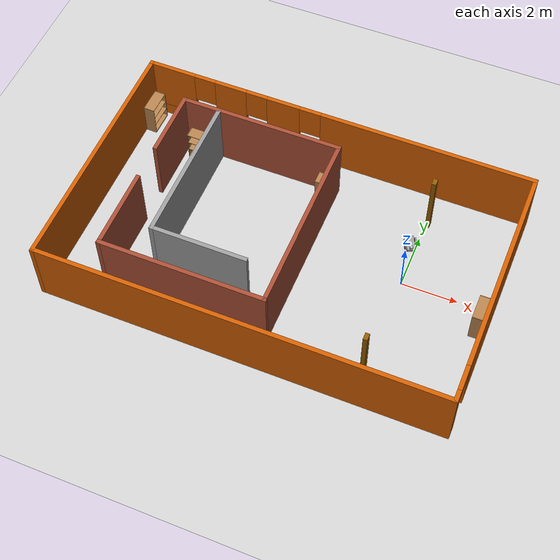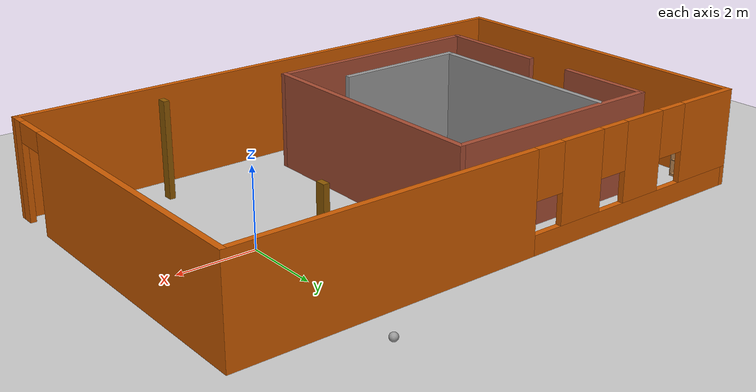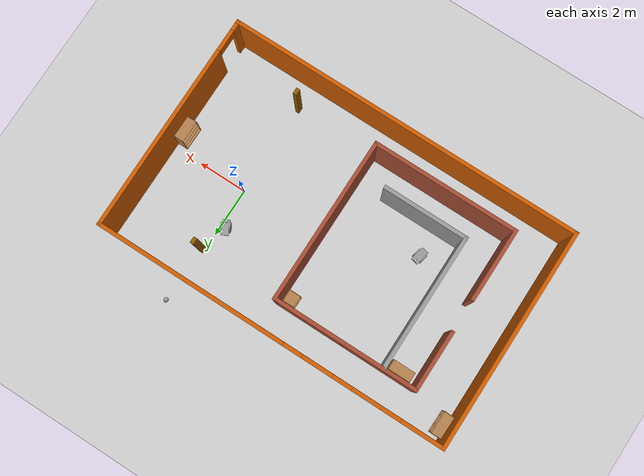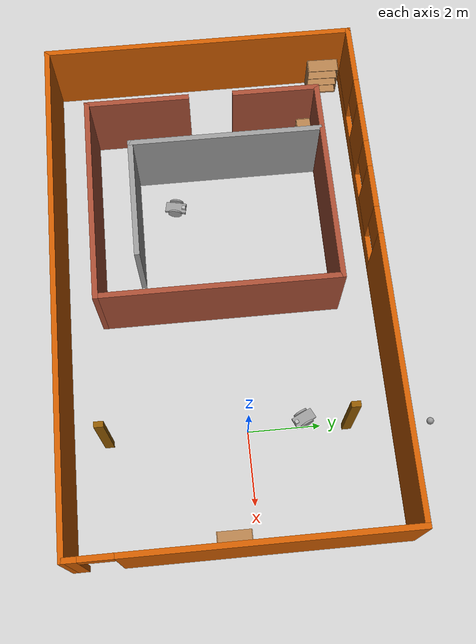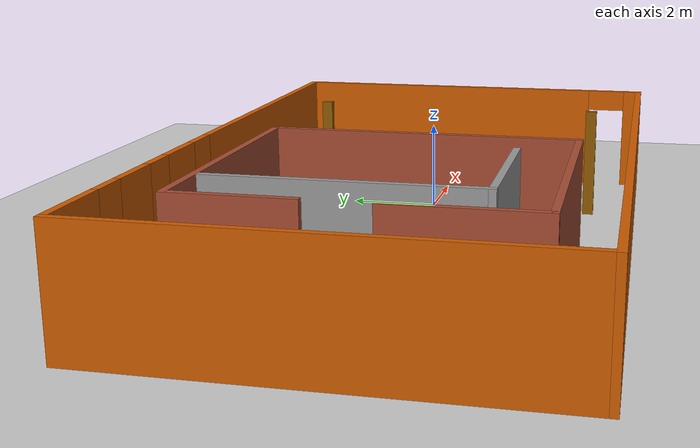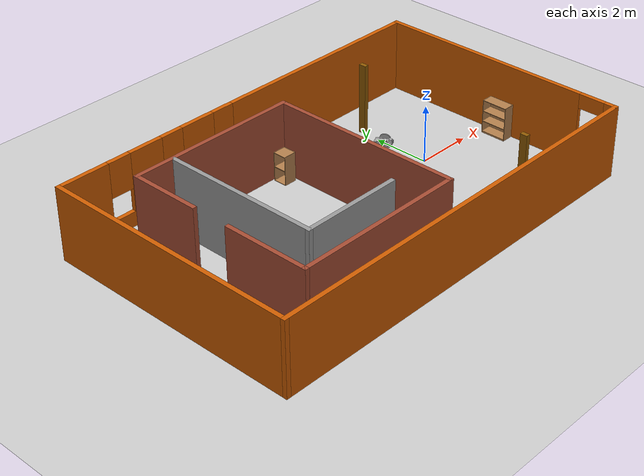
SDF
<sdf version="1.6">
 <world name="default">
  <light name="sun" type="directional">
   <pose>0 0 10 0 -0 0</pose>
   <diffuse>0.8 0.8 0.8 1</diffuse>
   <specular>0.2 0.2 0.2 1</specular>
   <attenuation>
    <range>1000</range>
    <constant>0.9</constant>
    <linear>0.01</linear>
    <quadratic>0.001</quadratic>
   </attenuation>
   <direction>-0.5 0.1 -0.9</direction>
  </light>
  <model name="ground_plane">
   <static>1</static>
   <link name="link">
    <collision name="collision">
     <geometry><plane><normal>0 0 1</normal><size>100 100</size></plane></geometry>
     <surface>
      <contact><collide_bitmask>65535</collide_bitmask></contact>
      <friction><ode><mu>100</mu><mu2>50</mu2></ode></friction>
     </surface>
    </collision>
    <visual name="visual">
     <cast_shadows>0</cast_shadows>
     <geometry><plane><normal>0 0 1</normal><size>100 100</size></plane></geometry>
     <material>
      <script><uri>file://media/materials/scripts/gazebo.material</uri><name>Gazebo/Grey</name></script>
     </material>
    </visual>
   </link>
  </model>
  <gravity>0 0 -9.8</gravity>
  <magnetic_field>6e-06 2.3e-05 -4.2e-05</magnetic_field>
  <atmosphere type="adiabatic"/>
  <physics name="default_physics" default="0" type="ode">
   <max_step_size>0.001</max_step_size>
   <real_time_factor>1</real_time_factor>
   <real_time_update_rate>1000</real_time_update_rate>
  </physics>
  <scene><ambient>0.4 0.4 0.4 1</ambient><background>0.7 0.7 0.7 1</background><shadows>1</shadows></scene>
  <audio><device>default</device></audio>
  <spherical_coordinates>
   <surface_model>EARTH_WGS84</surface_model>
   <latitude_deg>0</latitude_deg>
   <longitude_deg>0</longitude_deg>
   <elevation>0</elevation>
   <heading_deg>0</heading_deg>
  </spherical_coordinates>
  <model name="Untitled">
   <pose>-3.95922 -0.405564 0 0 -0 3.14159</pose>
   <link name="Wall_1">
    <pose>-7.175 0 0 0 -0 -1.5708</pose>
    <visual name="Wall_1_Visual_0">
     <pose>-4.27517 0 1.25 0 -0 0</pose>
     <geometry><box><size>0.449656 0.15 2.5</size></box></geometry>
     <material>
      <script><uri>file://media/materials/scripts/gazebo.material</uri><name>Gazebo/Grey</name></script>
      <ambient>0.807843 0.360784 0 1</ambient>
     </material>
     <meta><layer>0</layer></meta>
    </visual>
    <collision name="Wall_1_Collision_0">
     <geometry><box><size>0.449656 0.15 2.5</size></box></geometry>
     <pose>-4.27517 0 1.25 0 -0 0</pose>
    </collision>
    <visual name="Wall_1_Visual_1">
     <pose>0.674828 0 1.25 0 -0 0</pose>
     <geometry><box><size>7.65034 0.15 2.5</size></box></geometry>
     <material>
      <script><uri>file://media/materials/scripts/gazebo.material</uri><name>Gazebo/Grey</name></script>
      <ambient>0.807843 0.360784 0 1</ambient>
     </material>
     <meta><layer>0</layer></meta>
    </visual>
    <collision name="Wall_1_Collision_1">
     <geometry><box><size>7.65034 0.15 2.5</size></box></geometry>
     <pose>0.674828 0 1.25 0 -0 0</pose>
    </collision>
    <visual name="Wall_1_Visual_2">
     <pose>-3.60034 0 2.25 0 -0 0</pose>
     <geometry><box><size>0.9 0.15 0.5</size></box></geometry>
     <material>
      <script><uri>file://media/materials/scripts/gazebo.material</uri><name>Gazebo/Grey</name></script>
      <ambient>0.807843 0.360784 0 1</ambient>
     </material>
     <meta><layer>0</layer></meta>
    </visual>
    <collision name="Wall_1_Collision_2">
     <geometry><box><size>0.9 0.15 0.5</size></box></geometry>
     <pose>-3.60034 0 2.25 0 -0 0</pose>
    </collision>
   </link>
   <link name="Wall_10">
    <collision name="Wall_10_Collision">
     <geometry><box><size>6 0.15 2.5</size></box></geometry>
     <pose>0 0 1.25 0 -0 0</pose>
    </collision>
    <visual name="Wall_10_Visual">
     <pose>0 0 1.25 0 -0 0</pose>
     <geometry><box><size>6 0.15 2.5</size></box></geometry>
     <material>
      <script><uri>file://media/materials/scripts/gazebo.material</uri><name>Gazebo/Bricks</name></script>
      <ambient>1 1 1 1</ambient>
     </material>
     <meta><layer>0</layer></meta>
    </visual>
    <pose>2.40759 3.33887 0 0 -0 0</pose>
   </link>
   <link name="Wall_11">
    <collision name="Wall_11_Collision">
     <geometry><box><size>3 0.15 2.5</size></box></geometry>
     <pose>0 0 1.25 0 -0 0</pose>
    </collision>
    <visual name="Wall_11_Visual">
     <pose>0 0 1.25 0 -0 0</pose>
     <geometry><box><size>3 0.15 2.5</size></box></geometry>
     <material>
      <script><uri>file://media/materials/scripts/gazebo.material</uri><name>Gazebo/Bricks</name></script>
      <ambient>1 1 1 1</ambient>
     </material>
     <meta><layer>0</layer></meta>
    </visual>
    <pose>5.33259 1.91387 0 0 -0 -1.5708</pose>
   </link>
   <link name="Wall_13">
    <collision name="Wall_13_Collision">
     <geometry><box><size>5.5 0.15 2.5</size></box></geometry>
     <pose>0 0 1.25 0 -0 0</pose>
    </collision>
    <visual name="Wall_13_Visual">
     <pose>0 0 1.25 0 -0 0</pose>
     <geometry><box><size>5.5 0.15 2.5</size></box></geometry>
     <material>
      <script><uri>file://media/materials/scripts/gazebo.material</uri><name>Gazebo/Grey</name></script>
      <ambient>1 1 1 1</ambient>
     </material>
     <meta><layer>0</layer></meta>
    </visual>
    <pose>3.98803 -0.50293 0 0 -0 1.5708</pose>
   </link>
   <link name="Wall_14">
    <collision name="Wall_14_Collision">
     <geometry><box><size>3.5 0.15 2.5</size></box></geometry>
     <pose>0 0 1.25 0 -0 0</pose>
    </collision>
    <visual name="Wall_14_Visual">
     <pose>0 0 1.25 0 -0 0</pose>
     <geometry><box><size>3.5 0.15 2.5</size></box></geometry>
     <material>
      <script><uri>file://media/materials/scripts/gazebo.material</uri><name>Gazebo/Grey</name></script>
      <ambient>1 1 1 1</ambient>
     </material>
     <meta><layer>0</layer></meta>
    </visual>
    <pose>2.31303 2.17207 0 0 -0 3.14159</pose>
   </link>
   <link name="Wall_2">
    <pose>0 -4.425 0 0 -0 0</pose>
    <visual name="Wall_2_Visual_0">
     <pose>-3.32945 0 1.25 0 -0 0</pose>
     <geometry><box><size>7.84111 0.15 2.5</size></box></geometry>
     <material>
      <script><uri>file://media/materials/scripts/gazebo.material</uri><name>Gazebo/Grey</name></script>
      <ambient>0.807843 0.360784 0 1</ambient>
     </material>
     <meta><layer>0</layer></meta>
    </visual>
    <collision name="Wall_2_Collision_0">
     <geometry><box><size>7.84111 0.15 2.5</size></box></geometry>
     <pose>-3.32945 0 1.25 0 -0 0</pose>
    </collision>
    <visual name="Wall_2_Visual_1">
     <pose>3.92055 0 0.25 0 -0 0</pose>
     <geometry><box><size>6.65889 0.15 0.5</size></box></geometry>
     <material>
      <script><uri>file://media/materials/scripts/gazebo.material</uri><name>Gazebo/Grey</name></script>
      <ambient>0.807843 0.360784 0 1</ambient>
     </material>
     <meta><layer>0</layer></meta>
    </visual>
    <collision name="Wall_2_Collision_1">
     <geometry><box><size>6.65889 0.15 0.5</size></box></geometry>
     <pose>3.92055 0 0.25 0 -0 0</pose>
    </collision>
    <visual name="Wall_2_Visual_2">
     <pose>2.0169 0 1.5 0 -0 0</pose>
     <geometry><box><size>1.25158 0.15 2</size></box></geometry>
     <material>
      <script><uri>file://media/materials/scripts/gazebo.material</uri><name>Gazebo/Grey</name></script>
      <ambient>0.807843 0.360784 0 1</ambient>
     </material>
     <meta><layer>0</layer></meta>
    </visual>
    <collision name="Wall_2_Collision_2">
     <geometry><box><size>1.25158 0.15 2</size></box></geometry>
     <pose>2.0169 0 1.5 0 -0 0</pose>
    </collision>
    <visual name="Wall_2_Visual_3">
     <pose>4.04837 0 1.5 0 -0 0</pose>
     <geometry><box><size>1.21136 0.15 2</size></box></geometry>
     <material>
      <script><uri>file://media/materials/scripts/gazebo.material</uri><name>Gazebo/Grey</name></script>
      <ambient>0.807843 0.360784 0 1</ambient>
     </material>
     <meta><layer>0</layer></meta>
    </visual>
    <collision name="Wall_2_Collision_3">
     <geometry><box><size>1.21136 0.15 2</size></box></geometry>
     <pose>4.04837 0 1.5 0 -0 0</pose>
    </collision>
    <visual name="Wall_2_Visual_4">
     <pose>6.35203 0 1.5 0 -0 0</pose>
     <geometry><box><size>1.79595 0.15 2</size></box></geometry>
     <material>
      <script><uri>file://media/materials/scripts/gazebo.material</uri><name>Gazebo/Grey</name></script>
      <ambient>0.807843 0.360784 0 1</ambient>
     </material>
     <meta><layer>0</layer></meta>
    </visual>
    <collision name="Wall_2_Collision_4">
     <geometry><box><size>1.79595 0.15 2</size></box></geometry>
     <pose>6.35203 0 1.5 0 -0 0</pose>
    </collision>
    <visual name="Wall_2_Visual_5">
     <pose>0.99111 0 1.9 0 -0 0</pose>
     <geometry><box><size>0.8 0.15 1.2</size></box></geometry>
     <material>
      <script><uri>file://media/materials/scripts/gazebo.material</uri><name>Gazebo/Grey</name></script>
      <ambient>0.807843 0.360784 0 1</ambient>
     </material>
     <meta><layer>0</layer></meta>
    </visual>
    <collision name="Wall_2_Collision_5">
     <geometry><box><size>0.8 0.15 1.2</size></box></geometry>
     <pose>0.99111 0 1.9 0 -0 0</pose>
    </collision>
    <visual name="Wall_2_Visual_6">
     <pose>3.0427 0 1.9 0 -0 0</pose>
     <geometry><box><size>0.8 0.15 1.2</size></box></geometry>
     <material>
      <script><uri>file://media/materials/scripts/gazebo.material</uri><name>Gazebo/Grey</name></script>
      <ambient>0.807843 0.360784 0 1</ambient>
     </material>
     <meta><layer>0</layer></meta>
    </visual>
    <collision name="Wall_2_Collision_6">
     <geometry><box><size>0.8 0.15 1.2</size></box></geometry>
     <pose>3.0427 0 1.9 0 -0 0</pose>
    </collision>
    <visual name="Wall_2_Visual_7">
     <pose>5.05405 0 1.9 0 -0 0</pose>
     <geometry><box><size>0.8 0.15 1.2</size></box></geometry>
     <material>
      <script><uri>file://media/materials/scripts/gazebo.material</uri><name>Gazebo/Grey</name></script>
      <ambient>0.807843 0.360784 0 1</ambient>
     </material>
     <meta><layer>0</layer></meta>
    </visual>
    <collision name="Wall_2_Collision_7">
     <geometry><box><size>0.8 0.15 1.2</size></box></geometry>
     <pose>5.05405 0 1.9 0 -0 0</pose>
    </collision>
   </link>
   <link name="Wall_23">
    <collision name="Wall_23_Collision">
     <geometry><box><size>0.25 0.15 2.5</size></box></geometry>
     <pose>0 0 1.25 0 -0 0</pose>
    </collision>
    <visual name="Wall_23_Visual">
     <pose>0 0 1.25 0 -0 0</pose>
     <geometry><box><size>0.25 0.15 2.5</size></box></geometry>
     <material>
      <script><uri>file://media/materials/scripts/gazebo.material</uri><name>Gazebo/Grey</name></script>
      <ambient>0.560784 0.34902 0.00784314 1</ambient>
     </material>
     <meta><layer>0</layer></meta>
    </visual>
    <pose>-4.03728 -3.10782 0 0 -0 1.5708</pose>
   </link>
   <link name="Wall_25">
    <collision name="Wall_25_Collision">
     <geometry><box><size>0.25 0.15 2.5</size></box></geometry>
     <pose>0 0 1.25 0 -0 0</pose>
    </collision>
    <visual name="Wall_25_Visual">
     <pose>0 0 1.25 0 -0 0</pose>
     <geometry><box><size>0.25 0.15 2.5</size></box></geometry>
     <material>
      <script><uri>file://media/materials/scripts/gazebo.material</uri><name>Gazebo/Grey</name></script>
      <ambient>0.560784 0.34902 0.00784314 1</ambient>
     </material>
     <meta><layer>0</layer></meta>
    </visual>
    <pose>-3.95683 3.38944 0 0 -0 -1.5708</pose>
   </link>
   <link name="Wall_3">
    <collision name="Wall_3_Collision">
     <geometry><box><size>9 0.15 2.5</size></box></geometry>
     <pose>0 0 1.25 0 -0 0</pose>
    </collision>
    <visual name="Wall_3_Visual">
     <pose>0 0 1.25 0 -0 0</pose>
     <geometry><box><size>9 0.15 2.5</size></box></geometry>
     <material>
      <script><uri>file://media/materials/scripts/gazebo.material</uri><name>Gazebo/Grey</name></script>
      <ambient>0.807843 0.360784 0 1</ambient>
     </material>
     <meta><layer>0</layer></meta>
    </visual>
    <pose>7.175 0 0 0 -0 1.5708</pose>
   </link>
   <link name="Wall_4">
    <collision name="Wall_4_Collision">
     <geometry><box><size>14.5 0.15 2.5</size></box></geometry>
     <pose>0 0 1.25 0 -0 0</pose>
    </collision>
    <visual name="Wall_4_Visual">
     <pose>0 0 1.25 0 -0 0</pose>
     <geometry><box><size>14.5 0.15 2.5</size></box></geometry>
     <material>
      <script><uri>file://media/materials/scripts/gazebo.material</uri><name>Gazebo/Grey</name></script>
      <ambient>0.807843 0.360784 0 1</ambient>
     </material>
     <meta><layer>0</layer></meta>
    </visual>
    <pose>0 4.425 0 0 -0 3.14159</pose>
   </link>
   <link name="Wall_6">
    <collision name="Wall_6_Collision">
     <geometry><box><size>6.75 0.15 2.5</size></box></geometry>
     <pose>0 0 1.25 0 -0 0</pose>
    </collision>
    <visual name="Wall_6_Visual">
     <pose>0 0 1.25 0 -0 0</pose>
     <geometry><box><size>6.75 0.15 2.5</size></box></geometry>
     <material>
      <script><uri>file://media/materials/scripts/gazebo.material</uri><name>Gazebo/Bricks</name></script>
      <ambient>1 1 1 1</ambient>
     </material>
     <meta><layer>0</layer></meta>
    </visual>
    <pose>-0.517407 0.038867 0 0 -0 -1.5708</pose>
   </link>
   <link name="Wall_7">
    <collision name="Wall_7_Collision">
     <geometry><box><size>6 0.15 2.5</size></box></geometry>
     <pose>0 0 1.25 0 -0 0</pose>
    </collision>
    <visual name="Wall_7_Visual">
     <pose>0 0 1.25 0 -0 0</pose>
     <geometry><box><size>6 0.15 2.5</size></box></geometry>
     <material>
      <script><uri>file://media/materials/scripts/gazebo.material</uri><name>Gazebo/Bricks</name></script>
      <ambient>1 1 1 1</ambient>
     </material>
     <meta><layer>0</layer></meta>
    </visual>
    <pose>2.40759 -3.26113 0 0 -0 0</pose>
   </link>
   <link name="Wall_8">
    <collision name="Wall_8_Collision">
     <geometry><box><size>2.5 0.15 2.5</size></box></geometry>
     <pose>0 0 1.25 0 -0 0</pose>
    </collision>
    <visual name="Wall_8_Visual">
     <pose>0 0 1.25 0 -0 0</pose>
     <geometry><box><size>2.5 0.15 2.5</size></box></geometry>
     <material>
      <script><uri>file://media/materials/scripts/gazebo.material</uri><name>Gazebo/Bricks</name></script>
      <ambient>1 1 1 1</ambient>
     </material>
     <meta><layer>0</layer></meta>
    </visual>
    <pose>5.33259 -2.08613 0 0 -0 1.5708</pose>
   </link>
   <static>1</static>
  </model>
  <model name="differential_rob">
   <link name="link_0">
    <inertial>
     <mass>1</mass>
     <inertia>
      <ixx>0.166667</ixx>
      <ixy>0</ixy>
      <ixz>0</ixz>
      <iyy>0.166667</iyy>
      <iyz>0</iyz>
      <izz>0.166667</izz>
     </inertia>
    </inertial>
    <pose>0.017523 -0.034711 -0.014942 0 -0 0</pose>
    <visual name="visual">
     <geometry><box><size>0.6 0.3 0.1</size></box></geometry>
     <material>
      <lighting>1</lighting>
      <script><uri>file://media/materials/scripts/gazebo.material</uri><name>Gazebo/Grey</name></script>
      <shader type="vertex"><normal_map>__default__</normal_map></shader>
      <ambient>0.3 0.3 0.3 1</ambient>
      <diffuse>0.7 0.7 0.7 1</diffuse>
      <specular>0.01 0.01 0.01 1</specular>
      <emissive>0 0 0 1</emissive>
     </material>
    </visual>
    <collision name="collision">
     <geometry><box><size>0.6 0.3 0.1</size></box></geometry>
     <surface>
      <friction>
       <ode><mu>1</mu><mu2>1</mu2><fdir1>0 0 0</fdir1><slip1>0</slip1><slip2>0</slip2></ode>
       <torsional>
        <coefficient>1</coefficient>
        <patch_radius>0</patch_radius>
        <surface_radius>0</surface_radius>
        <use_patch_radius>1</use_patch_radius>
        <ode><slip>0</slip></ode>
       </torsional>
      </friction>
      <bounce><restitution_coefficient>0</restitution_coefficient><threshold>1e+06</threshold></bounce>
      <contact>
       <collide_without_contact>0</collide_without_contact>
       <collide_without_contact_bitmask>1</collide_without_contact_bitmask>
       <collide_bitmask>1</collide_bitmask>
       <ode>
        <soft_cfm>0</soft_cfm>
        <soft_erp>0.2</soft_erp>
        <kp>1e+13</kp>
        <kd>1</kd>
        <max_vel>0.01</max_vel>
        <min_depth>0</min_depth>
       </ode>
       <bullet>
        <split_impulse>1</split_impulse>
        <split_impulse_penetration_threshold>-0.01</split_impulse_penetration_threshold>
        <soft_cfm>0</soft_cfm>
        <soft_erp>0.2</soft_erp>
        <kp>1e+13</kp>
        <kd>1</kd>
       </bullet>
      </contact>
     </surface>
    </collision>
   </link>
   <link name="link_1_clone">
    <inertial>
     <mass>1</mass>
     <inertia><ixx>0.145833</ixx><ixy>0</ixy><ixz>0</ixz><iyy>0.145833</iyy><iyz>0</iyz><izz>0.125</izz></inertia>
    </inertial>
    <pose>0.017523 0.140308 -0.014942 1.5707 -0 0</pose>
    <visual name="visual">
     <geometry><cylinder><radius>0.2</radius><length>0.05</length></cylinder></geometry>
     <material>
      <lighting>1</lighting>
      <script><uri>file://media/materials/scripts/gazebo.material</uri><name>Gazebo/Grey</name></script>
      <shader type="vertex"><normal_map>__default__</normal_map></shader>
      <ambient>0.3 0.3 0.3 1</ambient>
      <diffuse>0.7 0.7 0.7 1</diffuse>
      <specular>0.01 0.01 0.01 1</specular>
      <emissive>0 0 0 1</emissive>
     </material>
    </visual>
    <collision name="collision">
     <geometry><cylinder><radius>0.2</radius><length>0.05</length></cylinder></geometry>
     <surface>
      <friction>
       <ode><mu>1</mu><mu2>1</mu2><fdir1>0 0 0</fdir1><slip1>0</slip1><slip2>0</slip2></ode>
       <torsional>
        <coefficient>1</coefficient>
        <patch_radius>0</patch_radius>
        <surface_radius>0</surface_radius>
        <use_patch_radius>1</use_patch_radius>
        <ode><slip>0</slip></ode>
       </torsional>
      </friction>
      <bounce><restitution_coefficient>0</restitution_coefficient><threshold>1e+06</threshold></bounce>
      <contact>
       <collide_without_contact>0</collide_without_contact>
       <collide_without_contact_bitmask>1</collide_without_contact_bitmask>
       <collide_bitmask>1</collide_bitmask>
       <ode>
        <soft_cfm>0</soft_cfm>
        <soft_erp>0.2</soft_erp>
        <kp>1e+13</kp>
        <kd>1</kd>
        <max_vel>0.01</max_vel>
        <min_depth>0</min_depth>
       </ode>
       <bullet>
        <split_impulse>1</split_impulse>
        <split_impulse_penetration_threshold>-0.01</split_impulse_penetration_threshold>
        <soft_cfm>0</soft_cfm>
        <soft_erp>0.2</soft_erp>
        <kp>1e+13</kp>
        <kd>1</kd>
       </bullet>
      </contact>
     </surface>
    </collision>
   </link>
   <link name="link_1_clone_clone">
    <inertial>
     <mass>1</mass>
     <inertia><ixx>0.145833</ixx><ixy>0</ixy><ixz>0</ixz><iyy>0.145833</iyy><iyz>0</iyz><izz>0.125</izz></inertia>
    </inertial>
    <pose>0.017523 -0.20973 -0.014942 1.5707 -0 0</pose>
    <visual name="visual">
     <geometry><cylinder><radius>0.2</radius><length>0.05</length></cylinder></geometry>
     <material>
      <lighting>1</lighting>
      <script><uri>file://media/materials/scripts/gazebo.material</uri><name>Gazebo/Grey</name></script>
      <shader type="vertex"><normal_map>__default__</normal_map></shader>
      <ambient>0.3 0.3 0.3 1</ambient>
      <diffuse>0.7 0.7 0.7 1</diffuse>
      <specular>0.01 0.01 0.01 1</specular>
      <emissive>0 0 0 1</emissive>
     </material>
    </visual>
    <collision name="collision">
     <geometry><cylinder><radius>0.2</radius><length>0.05</length></cylinder></geometry>
     <surface>
      <friction>
       <ode><mu>1</mu><mu2>1</mu2><fdir1>0 0 0</fdir1><slip1>0</slip1><slip2>0</slip2></ode>
       <torsional>
        <coefficient>1</coefficient>
        <patch_radius>0</patch_radius>
        <surface_radius>0</surface_radius>
        <use_patch_radius>1</use_patch_radius>
        <ode><slip>0</slip></ode>
       </torsional>
      </friction>
      <bounce><restitution_coefficient>0</restitution_coefficient><threshold>1e+06</threshold></bounce>
      <contact>
       <collide_without_contact>0</collide_without_contact>
       <collide_without_contact_bitmask>1</collide_without_contact_bitmask>
       <collide_bitmask>1</collide_bitmask>
       <ode>
        <soft_cfm>0</soft_cfm>
        <soft_erp>0.2</soft_erp>
        <kp>1e+13</kp>
        <kd>1</kd>
        <max_vel>0.01</max_vel>
        <min_depth>0</min_depth>
       </ode>
       <bullet>
        <split_impulse>1</split_impulse>
        <split_impulse_penetration_threshold>-0.01</split_impulse_penetration_threshold>
        <soft_cfm>0</soft_cfm>
        <soft_erp>0.2</soft_erp>
        <kp>1e+13</kp>
        <kd>1</kd>
       </bullet>
      </contact>
     </surface>
    </collision>
   </link>
   <link name="link_2">
    <inertial>
     <mass>1</mass>
     <inertia><ixx>0.1</ixx><ixy>0</ixy><ixz>0</ixz><iyy>0.1</iyy><iyz>0</iyz><izz>0.1</izz></inertia>
    </inertial>
    <pose>0.177523 -0.024711 -0.139942 0 -0 0</pose>
    <visual name="visual">
     <geometry><sphere><radius>0.075</radius></sphere></geometry>
     <material>
      <lighting>1</lighting>
      <script><uri>file://media/materials/scripts/gazebo.material</uri><name>Gazebo/Grey</name></script>
      <shader type="vertex"><normal_map>__default__</normal_map></shader>
      <ambient>0.3 0.3 0.3 1</ambient>
      <diffuse>0.7 0.7 0.7 1</diffuse>
      <specular>0.01 0.01 0.01 1</specular>
      <emissive>0 0 0 1</emissive>
     </material>
    </visual>
    <collision name="collision">
     <geometry><sphere><radius>0.075</radius></sphere></geometry>
     <surface>
      <friction>
       <ode><mu>1</mu><mu2>1</mu2><fdir1>0 0 0</fdir1><slip1>0</slip1><slip2>0</slip2></ode>
       <torsional>
        <coefficient>1</coefficient>
        <patch_radius>0</patch_radius>
        <surface_radius>0</surface_radius>
        <use_patch_radius>1</use_patch_radius>
        <ode><slip>0</slip></ode>
       </torsional>
      </friction>
      <bounce><restitution_coefficient>0</restitution_coefficient><threshold>1e+06</threshold></bounce>
      <contact>
       <collide_without_contact>0</collide_without_contact>
       <collide_without_contact_bitmask>1</collide_without_contact_bitmask>
       <collide_bitmask>1</collide_bitmask>
       <ode>
        <soft_cfm>0</soft_cfm>
        <soft_erp>0.2</soft_erp>
        <kp>1e+13</kp>
        <kd>1</kd>
        <max_vel>0.01</max_vel>
        <min_depth>0</min_depth>
       </ode>
       <bullet>
        <split_impulse>1</split_impulse>
        <split_impulse_penetration_threshold>-0.01</split_impulse_penetration_threshold>
        <soft_cfm>0</soft_cfm>
        <soft_erp>0.2</soft_erp>
        <kp>1e+13</kp>
        <kd>1</kd>
       </bullet>
      </contact>
     </surface>
    </collision>
   </link>
   <link name="link_2_clone">
    <inertial>
     <mass>1</mass>
     <inertia><ixx>0.1</ixx><ixy>0</ixy><ixz>0</ixz><iyy>0.1</iyy><iyz>0</iyz><izz>0.1</izz></inertia>
    </inertial>
    <pose>-0.207477 -0.034711 -0.139942 0 -0 0</pose>
    <visual name="visual">
     <geometry><sphere><radius>0.075</radius></sphere></geometry>
     <material>
      <lighting>1</lighting>
      <script><uri>file://media/materials/scripts/gazebo.material</uri><name>Gazebo/Grey</name></script>
      <shader type="vertex"><normal_map>__default__</normal_map></shader>
      <ambient>0.3 0.3 0.3 1</ambient>
      <diffuse>0.7 0.7 0.7 1</diffuse>
      <specular>0.01 0.01 0.01 1</specular>
      <emissive>0 0 0 1</emissive>
     </material>
    </visual>
    <collision name="collision">
     <geometry><sphere><radius>0.075</radius></sphere></geometry>
     <surface>
      <friction>
       <ode><mu>1</mu><mu2>1</mu2><fdir1>0 0 0</fdir1><slip1>0</slip1><slip2>0</slip2></ode>
       <torsional>
        <coefficient>1</coefficient>
        <patch_radius>0</patch_radius>
        <surface_radius>0</surface_radius>
        <use_patch_radius>1</use_patch_radius>
        <ode><slip>0</slip></ode>
       </torsional>
      </friction>
      <bounce><restitution_coefficient>0</restitution_coefficient><threshold>1e+06</threshold></bounce>
      <contact>
       <collide_without_contact>0</collide_without_contact>
       <collide_without_contact_bitmask>1</collide_without_contact_bitmask>
       <collide_bitmask>1</collide_bitmask>
       <ode>
        <soft_cfm>0</soft_cfm>
        <soft_erp>0.2</soft_erp>
        <kp>1e+13</kp>
        <kd>1</kd>
        <max_vel>0.01</max_vel>
        <min_depth>0</min_depth>
       </ode>
       <bullet>
        <split_impulse>1</split_impulse>
        <split_impulse_penetration_threshold>-0.01</split_impulse_penetration_threshold>
        <soft_cfm>0</soft_cfm>
        <soft_erp>0.2</soft_erp>
        <kp>1e+13</kp>
        <kd>1</kd>
       </bullet>
      </contact>
     </surface>
    </collision>
   </link>
   <model name="depth_camera">
    <link name="link">
     <pose>0 0 0.05 0 -0 0</pose>
     <inertial>
      <mass>0.1</mass>
      <inertia>
       <ixx>0.000166667</ixx>
       <iyy>0.000166667</iyy>
       <izz>0.000166667</izz>
       <ixy>0</ixy>
       <ixz>0</ixz>
       <iyz>0</iyz>
      </inertia>
     </inertial>
     <collision name="collision"><geometry><box><size>0.1 0.1 0.1</size></box></geometry></collision>
     <visual name="visual"><geometry><box><size>0.1 0.1 0.1</size></box></geometry></visual>
     <sensor name="camera" type="depth">
      <camera name="__default__">
       <horizontal_fov>1.047</horizontal_fov>
       <image><width>320</width><height>240</height></image>
       <clip><near>0.1</near><far>100</far></clip>
      </camera>
      <always_on>1</always_on>
      <update_rate>30</update_rate>
      <visualize>1</visualize>
     </sensor>
    </link>
    <pose>0.251419 -0.035884 0.024712 0 -0 0</pose>
   </model>
   <joint name="link_0_JOINT_2" type="revolute">
    <parent>link_0</parent>
    <child>link_1_clone</child>
    <axis>
     <xyz>0 0 1</xyz>
     <use_parent_model_frame>0</use_parent_model_frame>
     <limit>
      <lower>-1.79769e+308</lower>
      <upper>1.79769e+308</upper>
      <effort>-1</effort>
      <velocity>-1</velocity>
     </limit>
     <dynamics>
      <spring_reference>0</spring_reference>
      <spring_stiffness>0</spring_stiffness>
      <damping>0</damping>
     </dynamics>
    </axis>
    <physics>
     <ode><limit><cfm>0</cfm><erp>0.2</erp></limit><suspension><cfm>0</cfm><erp>0.2</erp></suspension></ode>
    </physics>
   </joint>
   <joint name="link_0_JOINT_3" type="revolute">
    <parent>link_0</parent>
    <child>link_1_clone_clone</child>
    <axis>
     <xyz>0 0 1</xyz>
     <use_parent_model_frame>0</use_parent_model_frame>
     <limit>
      <lower>-1.79769e+308</lower>
      <upper>1.79769e+308</upper>
      <effort>-1</effort>
      <velocity>-1</velocity>
     </limit>
     <dynamics>
      <spring_reference>0</spring_reference>
      <spring_stiffness>0</spring_stiffness>
      <damping>0</damping>
     </dynamics>
    </axis>
    <physics>
     <ode><limit><cfm>0</cfm><erp>0.2</erp></limit><suspension><cfm>0</cfm><erp>0.2</erp></suspension></ode>
    </physics>
   </joint>
   <joint name="link_0_JOINT_5" type="ball">
    <parent>link_0</parent>
    <child>link_2_clone</child>
    <physics>
     <ode><limit><cfm>0</cfm><erp>0.2</erp></limit><suspension><cfm>0</cfm><erp>0.2</erp></suspension></ode>
    </physics>
   </joint>
   <joint name="link_0_JOINT_6" type="ball">
    <parent>link_0</parent>
    <child>link_2</child>
    <physics>
     <ode><limit><cfm>0</cfm><erp>0.2</erp></limit><suspension><cfm>0</cfm><erp>0.2</erp></suspension></ode>
    </physics>
   </joint>
   <joint name="link_0_JOINT_7" type="fixed">
    <parent>link_0</parent>
    <child>depth_camera::link</child>
    <physics>
     <ode><limit><cfm>0</cfm><erp>0.2</erp></limit><suspension><cfm>0</cfm><erp>0.2</erp></suspension></ode>
    </physics>
   </joint>
   <static>0</static>
   <pose>-0.183058 1.5895 0.21494 -0 9e-06 -1.12259</pose>
  </model>
  <model name="differential_rob_0">
   <link name="link_0">
    <inertial>
     <mass>1</mass>
     <inertia>
      <ixx>0.166667</ixx>
      <ixy>0</ixy>
      <ixz>0</ixz>
      <iyy>0.166667</iyy>
      <iyz>0</iyz>
      <izz>0.166667</izz>
     </inertia>
    </inertial>
    <pose>0.017523 -0.034711 -0.014942 0 -0 0</pose>
    <visual name="visual">
     <geometry><box><size>0.6 0.3 0.1</size></box></geometry>
     <material>
      <lighting>1</lighting>
      <script><uri>file://media/materials/scripts/gazebo.material</uri><name>Gazebo/Grey</name></script>
      <shader type="vertex"><normal_map>__default__</normal_map></shader>
      <ambient>0.3 0.3 0.3 1</ambient>
      <diffuse>0.7 0.7 0.7 1</diffuse>
      <specular>0.01 0.01 0.01 1</specular>
      <emissive>0 0 0 1</emissive>
     </material>
    </visual>
    <collision name="collision">
     <geometry><box><size>0.6 0.3 0.1</size></box></geometry>
     <surface>
      <friction>
       <ode><mu>1</mu><mu2>1</mu2><fdir1>0 0 0</fdir1><slip1>0</slip1><slip2>0</slip2></ode>
       <torsional>
        <coefficient>1</coefficient>
        <patch_radius>0</patch_radius>
        <surface_radius>0</surface_radius>
        <use_patch_radius>1</use_patch_radius>
        <ode><slip>0</slip></ode>
       </torsional>
      </friction>
      <bounce><restitution_coefficient>0</restitution_coefficient><threshold>1e+06</threshold></bounce>
      <contact>
       <collide_without_contact>0</collide_without_contact>
       <collide_without_contact_bitmask>1</collide_without_contact_bitmask>
       <collide_bitmask>1</collide_bitmask>
       <ode>
        <soft_cfm>0</soft_cfm>
        <soft_erp>0.2</soft_erp>
        <kp>1e+13</kp>
        <kd>1</kd>
        <max_vel>0.01</max_vel>
        <min_depth>0</min_depth>
       </ode>
       <bullet>
        <split_impulse>1</split_impulse>
        <split_impulse_penetration_threshold>-0.01</split_impulse_penetration_threshold>
        <soft_cfm>0</soft_cfm>
        <soft_erp>0.2</soft_erp>
        <kp>1e+13</kp>
        <kd>1</kd>
       </bullet>
      </contact>
     </surface>
    </collision>
   </link>
   <link name="link_1_clone">
    <inertial>
     <mass>1</mass>
     <inertia><ixx>0.145833</ixx><ixy>0</ixy><ixz>0</ixz><iyy>0.145833</iyy><iyz>0</iyz><izz>0.125</izz></inertia>
    </inertial>
    <pose>0.017523 0.140308 -0.014942 1.5707 -0 0</pose>
    <visual name="visual">
     <geometry><cylinder><radius>0.2</radius><length>0.05</length></cylinder></geometry>
     <material>
      <lighting>1</lighting>
      <script><uri>file://media/materials/scripts/gazebo.material</uri><name>Gazebo/Grey</name></script>
      <shader type="vertex"><normal_map>__default__</normal_map></shader>
      <ambient>0.3 0.3 0.3 1</ambient>
      <diffuse>0.7 0.7 0.7 1</diffuse>
      <specular>0.01 0.01 0.01 1</specular>
      <emissive>0 0 0 1</emissive>
     </material>
    </visual>
    <collision name="collision">
     <geometry><cylinder><radius>0.2</radius><length>0.05</length></cylinder></geometry>
     <surface>
      <friction>
       <ode><mu>1</mu><mu2>1</mu2><fdir1>0 0 0</fdir1><slip1>0</slip1><slip2>0</slip2></ode>
       <torsional>
        <coefficient>1</coefficient>
        <patch_radius>0</patch_radius>
        <surface_radius>0</surface_radius>
        <use_patch_radius>1</use_patch_radius>
        <ode><slip>0</slip></ode>
       </torsional>
      </friction>
      <bounce><restitution_coefficient>0</restitution_coefficient><threshold>1e+06</threshold></bounce>
      <contact>
       <collide_without_contact>0</collide_without_contact>
       <collide_without_contact_bitmask>1</collide_without_contact_bitmask>
       <collide_bitmask>1</collide_bitmask>
       <ode>
        <soft_cfm>0</soft_cfm>
        <soft_erp>0.2</soft_erp>
        <kp>1e+13</kp>
        <kd>1</kd>
        <max_vel>0.01</max_vel>
        <min_depth>0</min_depth>
       </ode>
       <bullet>
        <split_impulse>1</split_impulse>
        <split_impulse_penetration_threshold>-0.01</split_impulse_penetration_threshold>
        <soft_cfm>0</soft_cfm>
        <soft_erp>0.2</soft_erp>
        <kp>1e+13</kp>
        <kd>1</kd>
       </bullet>
      </contact>
     </surface>
    </collision>
   </link>
   <link name="link_1_clone_clone">
    <inertial>
     <mass>1</mass>
     <inertia><ixx>0.145833</ixx><ixy>0</ixy><ixz>0</ixz><iyy>0.145833</iyy><iyz>0</iyz><izz>0.125</izz></inertia>
    </inertial>
    <pose>0.017523 -0.20973 -0.014942 1.5707 -0 0</pose>
    <visual name="visual">
     <geometry><cylinder><radius>0.2</radius><length>0.05</length></cylinder></geometry>
     <material>
      <lighting>1</lighting>
      <script><uri>file://media/materials/scripts/gazebo.material</uri><name>Gazebo/Grey</name></script>
      <shader type="vertex"><normal_map>__default__</normal_map></shader>
      <ambient>0.3 0.3 0.3 1</ambient>
      <diffuse>0.7 0.7 0.7 1</diffuse>
      <specular>0.01 0.01 0.01 1</specular>
      <emissive>0 0 0 1</emissive>
     </material>
    </visual>
    <collision name="collision">
     <geometry><cylinder><radius>0.2</radius><length>0.05</length></cylinder></geometry>
     <surface>
      <friction>
       <ode><mu>1</mu><mu2>1</mu2><fdir1>0 0 0</fdir1><slip1>0</slip1><slip2>0</slip2></ode>
       <torsional>
        <coefficient>1</coefficient>
        <patch_radius>0</patch_radius>
        <surface_radius>0</surface_radius>
        <use_patch_radius>1</use_patch_radius>
        <ode><slip>0</slip></ode>
       </torsional>
      </friction>
      <bounce><restitution_coefficient>0</restitution_coefficient><threshold>1e+06</threshold></bounce>
      <contact>
       <collide_without_contact>0</collide_without_contact>
       <collide_without_contact_bitmask>1</collide_without_contact_bitmask>
       <collide_bitmask>1</collide_bitmask>
       <ode>
        <soft_cfm>0</soft_cfm>
        <soft_erp>0.2</soft_erp>
        <kp>1e+13</kp>
        <kd>1</kd>
        <max_vel>0.01</max_vel>
        <min_depth>0</min_depth>
       </ode>
       <bullet>
        <split_impulse>1</split_impulse>
        <split_impulse_penetration_threshold>-0.01</split_impulse_penetration_threshold>
        <soft_cfm>0</soft_cfm>
        <soft_erp>0.2</soft_erp>
        <kp>1e+13</kp>
        <kd>1</kd>
       </bullet>
      </contact>
     </surface>
    </collision>
   </link>
   <link name="link_2">
    <inertial>
     <mass>1</mass>
     <inertia><ixx>0.1</ixx><ixy>0</ixy><ixz>0</ixz><iyy>0.1</iyy><iyz>0</iyz><izz>0.1</izz></inertia>
    </inertial>
    <pose>0.177523 -0.024711 -0.139942 0 -0 0</pose>
    <visual name="visual">
     <geometry><sphere><radius>0.075</radius></sphere></geometry>
     <material>
      <lighting>1</lighting>
      <script><uri>file://media/materials/scripts/gazebo.material</uri><name>Gazebo/Grey</name></script>
      <shader type="vertex"><normal_map>__default__</normal_map></shader>
      <ambient>0.3 0.3 0.3 1</ambient>
      <diffuse>0.7 0.7 0.7 1</diffuse>
      <specular>0.01 0.01 0.01 1</specular>
      <emissive>0 0 0 1</emissive>
     </material>
    </visual>
    <collision name="collision">
     <geometry><sphere><radius>0.075</radius></sphere></geometry>
     <surface>
      <friction>
       <ode><mu>1</mu><mu2>1</mu2><fdir1>0 0 0</fdir1><slip1>0</slip1><slip2>0</slip2></ode>
       <torsional>
        <coefficient>1</coefficient>
        <patch_radius>0</patch_radius>
        <surface_radius>0</surface_radius>
        <use_patch_radius>1</use_patch_radius>
        <ode><slip>0</slip></ode>
       </torsional>
      </friction>
      <bounce><restitution_coefficient>0</restitution_coefficient><threshold>1e+06</threshold></bounce>
      <contact>
       <collide_without_contact>0</collide_without_contact>
       <collide_without_contact_bitmask>1</collide_without_contact_bitmask>
       <collide_bitmask>1</collide_bitmask>
       <ode>
        <soft_cfm>0</soft_cfm>
        <soft_erp>0.2</soft_erp>
        <kp>1e+13</kp>
        <kd>1</kd>
        <max_vel>0.01</max_vel>
        <min_depth>0</min_depth>
       </ode>
       <bullet>
        <split_impulse>1</split_impulse>
        <split_impulse_penetration_threshold>-0.01</split_impulse_penetration_threshold>
        <soft_cfm>0</soft_cfm>
        <soft_erp>0.2</soft_erp>
        <kp>1e+13</kp>
        <kd>1</kd>
       </bullet>
      </contact>
     </surface>
    </collision>
   </link>
   <link name="link_2_clone">
    <inertial>
     <mass>1</mass>
     <inertia><ixx>0.1</ixx><ixy>0</ixy><ixz>0</ixz><iyy>0.1</iyy><iyz>0</iyz><izz>0.1</izz></inertia>
    </inertial>
    <pose>-0.207477 -0.034711 -0.139942 0 -0 0</pose>
    <visual name="visual">
     <geometry><sphere><radius>0.075</radius></sphere></geometry>
     <material>
      <lighting>1</lighting>
      <script><uri>file://media/materials/scripts/gazebo.material</uri><name>Gazebo/Grey</name></script>
      <shader type="vertex"><normal_map>__default__</normal_map></shader>
      <ambient>0.3 0.3 0.3 1</ambient>
      <diffuse>0.7 0.7 0.7 1</diffuse>
      <specular>0.01 0.01 0.01 1</specular>
      <emissive>0 0 0 1</emissive>
     </material>
    </visual>
    <collision name="collision">
     <geometry><sphere><radius>0.075</radius></sphere></geometry>
     <surface>
      <friction>
       <ode><mu>1</mu><mu2>1</mu2><fdir1>0 0 0</fdir1><slip1>0</slip1><slip2>0</slip2></ode>
       <torsional>
        <coefficient>1</coefficient>
        <patch_radius>0</patch_radius>
        <surface_radius>0</surface_radius>
        <use_patch_radius>1</use_patch_radius>
        <ode><slip>0</slip></ode>
       </torsional>
      </friction>
      <bounce><restitution_coefficient>0</restitution_coefficient><threshold>1e+06</threshold></bounce>
      <contact>
       <collide_without_contact>0</collide_without_contact>
       <collide_without_contact_bitmask>1</collide_without_contact_bitmask>
       <collide_bitmask>1</collide_bitmask>
       <ode>
        <soft_cfm>0</soft_cfm>
        <soft_erp>0.2</soft_erp>
        <kp>1e+13</kp>
        <kd>1</kd>
        <max_vel>0.01</max_vel>
        <min_depth>0</min_depth>
       </ode>
       <bullet>
        <split_impulse>1</split_impulse>
        <split_impulse_penetration_threshold>-0.01</split_impulse_penetration_threshold>
        <soft_cfm>0</soft_cfm>
        <soft_erp>0.2</soft_erp>
        <kp>1e+13</kp>
        <kd>1</kd>
       </bullet>
      </contact>
     </surface>
    </collision>
   </link>
   <model name="depth_camera">
    <link name="link">
     <pose>0 0 0.05 0 -0 0</pose>
     <inertial>
      <mass>0.1</mass>
      <inertia>
       <ixx>0.000166667</ixx>
       <iyy>0.000166667</iyy>
       <izz>0.000166667</izz>
       <ixy>0</ixy>
       <ixz>0</ixz>
       <iyz>0</iyz>
      </inertia>
     </inertial>
     <collision name="collision"><geometry><box><size>0.1 0.1 0.1</size></box></geometry></collision>
     <visual name="visual"><geometry><box><size>0.1 0.1 0.1</size></box></geometry></visual>
     <sensor name="camera" type="depth">
      <camera name="__default__">
       <horizontal_fov>1.047</horizontal_fov>
       <image><width>320</width><height>240</height></image>
       <clip><near>0.1</near><far>100</far></clip>
      </camera>
      <always_on>1</always_on>
      <update_rate>30</update_rate>
      <visualize>1</visualize>
     </sensor>
    </link>
    <pose>0.251419 -0.035884 0.024712 0 -0 0</pose>
   </model>
   <joint name="link_0_JOINT_2" type="revolute">
    <parent>link_0</parent>
    <child>link_1_clone</child>
    <axis>
     <xyz>0 0 1</xyz>
     <use_parent_model_frame>0</use_parent_model_frame>
     <limit>
      <lower>-1.79769e+308</lower>
      <upper>1.79769e+308</upper>
      <effort>-1</effort>
      <velocity>-1</velocity>
     </limit>
     <dynamics>
      <spring_reference>0</spring_reference>
      <spring_stiffness>0</spring_stiffness>
      <damping>0</damping>
     </dynamics>
    </axis>
    <physics>
     <ode><limit><cfm>0</cfm><erp>0.2</erp></limit><suspension><cfm>0</cfm><erp>0.2</erp></suspension></ode>
    </physics>
   </joint>
   <joint name="link_0_JOINT_3" type="revolute">
    <parent>link_0</parent>
    <child>link_1_clone_clone</child>
    <axis>
     <xyz>0 0 1</xyz>
     <use_parent_model_frame>0</use_parent_model_frame>
     <limit>
      <lower>-1.79769e+308</lower>
      <upper>1.79769e+308</upper>
      <effort>-1</effort>
      <velocity>-1</velocity>
     </limit>
     <dynamics>
      <spring_reference>0</spring_reference>
      <spring_stiffness>0</spring_stiffness>
      <damping>0</damping>
     </dynamics>
    </axis>
    <physics>
     <ode><limit><cfm>0</cfm><erp>0.2</erp></limit><suspension><cfm>0</cfm><erp>0.2</erp></suspension></ode>
    </physics>
   </joint>
   <joint name="link_0_JOINT_5" type="ball">
    <parent>link_0</parent>
    <child>link_2_clone</child>
    <physics>
     <ode><limit><cfm>0</cfm><erp>0.2</erp></limit><suspension><cfm>0</cfm><erp>0.2</erp></suspension></ode>
    </physics>
   </joint>
   <joint name="link_0_JOINT_6" type="ball">
    <parent>link_0</parent>
    <child>link_2</child>
    <physics>
     <ode><limit><cfm>0</cfm><erp>0.2</erp></limit><suspension><cfm>0</cfm><erp>0.2</erp></suspension></ode>
    </physics>
   </joint>
   <joint name="link_0_JOINT_7" type="fixed">
    <parent>link_0</parent>
    <child>depth_camera::link</child>
    <physics>
     <ode><limit><cfm>0</cfm><erp>0.2</erp></limit><suspension><cfm>0</cfm><erp>0.2</erp></suspension></ode>
    </physics>
   </joint>
   <static>0</static>
   <pose>-6.95794 -1.49565 0.214945 5e-06 -1.4e-05 1.36902</pose>
  </model>
  <model name="bookshelf">
   <static>1</static>
   <link name="link">
    <inertial><mass>1</mass></inertial>
    <collision name="back">
     <pose>0 0.005 0.6 0 -0 0</pose>
     <geometry><box><size>0.9 0.01 1.2</size></box></geometry>
    </collision>
    <visual name="visual1">
     <pose>0 0.005 0.6 0 -0 0</pose>
     <geometry><box><size>0.9 0.01 1.2</size></box></geometry>
     <material>
      <script><uri>file://media/materials/scripts/gazebo.material</uri><name>Gazebo/Wood</name></script>
     </material>
    </visual>
    <collision name="left_side">
     <pose>0.45 -0.195 0.6 0 -0 0</pose>
     <geometry><box><size>0.02 0.4 1.2</size></box></geometry>
    </collision>
    <visual name="visual2">
     <pose>0.45 -0.195 0.6 0 -0 0</pose>
     <geometry><box><size>0.02 0.4 1.2</size></box></geometry>
     <material>
      <script><uri>file://media/materials/scripts/gazebo.material</uri><name>Gazebo/Wood</name></script>
     </material>
    </visual>
    <collision name="right_side">
     <pose>-0.45 -0.195 0.6 0 -0 0</pose>
     <geometry><box><size>0.02 0.4 1.2</size></box></geometry>
    </collision>
    <visual name="visual3">
     <pose>-0.45 -0.195 0.6 0 -0 0</pose>
     <geometry><box><size>0.02 0.4 1.2</size></box></geometry>
     <material>
      <script><uri>file://media/materials/scripts/gazebo.material</uri><name>Gazebo/Wood</name></script>
     </material>
    </visual>
    <collision name="bottom">
     <pose>0 -0.195 0.03 0 -0 0</pose>
     <geometry><box><size>0.88 0.4 0.06</size></box></geometry>
    </collision>
    <visual name="visual4">
     <pose>0 -0.195 0.03 0 -0 0</pose>
     <geometry><box><size>0.88 0.4 0.06</size></box></geometry>
     <material>
      <script><uri>file://media/materials/scripts/gazebo.material</uri><name>Gazebo/Wood</name></script>
     </material>
    </visual>
    <collision name="top">
     <pose>0 -0.195 1.19 0 -0 0</pose>
     <geometry><box><size>0.88 0.4 0.02</size></box></geometry>
    </collision>
    <visual name="visual5">
     <pose>0 -0.195 1.19 0 -0 0</pose>
     <geometry><box><size>0.88 0.4 0.02</size></box></geometry>
     <material>
      <script><uri>file://media/materials/scripts/gazebo.material</uri><name>Gazebo/Wood</name></script>
     </material>
    </visual>
    <collision name="low_shelf">
     <pose>0 -0.195 0.43 0 -0 0</pose>
     <geometry><box><size>0.88 0.4 0.02</size></box></geometry>
    </collision>
    <visual name="visual6">
     <pose>0 -0.195 0.43 0 -0 0</pose>
     <geometry><box><size>0.88 0.4 0.02</size></box></geometry>
     <material>
      <script><uri>file://media/materials/scripts/gazebo.material</uri><name>Gazebo/Wood</name></script>
     </material>
    </visual>
    <collision name="high_shelf">
     <pose>0 -0.195 0.8 0 -0 0</pose>
     <geometry><box><size>0.88 0.4 0.02</size></box></geometry>
    </collision>
    <visual name="visual7">
     <pose>0 -0.195 0.8 0 -0 0</pose>
     <geometry><box><size>0.88 0.4 0.02</size></box></geometry>
     <material>
      <script><uri>file://media/materials/scripts/gazebo.material</uri><name>Gazebo/Wood</name></script>
     </material>
    </visual>
   </link>
   <pose>-11.0369 3.35193 0 0 -0 1.55161</pose>
  </model>
  <model name="my_ball">
   <link name="link_0">
    <inertial>
     <mass>1</mass>
     <inertia><ixx>0.1</ixx><ixy>0</ixy><ixz>0</ixz><iyy>0.1</iyy><iyz>0</iyz><izz>0.1</izz></inertia>
    </inertial>
    <pose>0.045766 1.22306 0 0 -0 0</pose>
    <visual name="visual">
     <geometry><sphere><radius>0.1</radius></sphere></geometry>
     <material>
      <lighting>1</lighting>
      <script><uri>file://media/materials/scripts/gazebo.material</uri><name>Gazebo/Grey</name></script>
      <shader type="vertex"><normal_map>__default__</normal_map></shader>
      <ambient>1 1 1 1</ambient>
      <diffuse>1 1 1 1</diffuse>
      <specular>1 1 1 1</specular>
      <emissive>1 1 1 1</emissive>
     </material>
    </visual>
    <collision name="collision">
     <geometry><sphere><radius>0.1</radius></sphere></geometry>
     <surface>
      <friction>
       <ode><mu>1</mu><mu2>1</mu2><fdir1>0 0 0</fdir1><slip1>0</slip1><slip2>0</slip2></ode>
       <torsional>
        <coefficient>1</coefficient>
        <patch_radius>0</patch_radius>
        <surface_radius>0</surface_radius>
        <use_patch_radius>1</use_patch_radius>
        <ode><slip>0</slip></ode>
       </torsional>
      </friction>
      <bounce><restitution_coefficient>0</restitution_coefficient><threshold>1e+06</threshold></bounce>
      <contact>
       <collide_without_contact>0</collide_without_contact>
       <collide_without_contact_bitmask>1</collide_without_contact_bitmask>
       <collide_bitmask>1</collide_bitmask>
       <ode>
        <soft_cfm>0</soft_cfm>
        <soft_erp>0.2</soft_erp>
        <kp>1e+13</kp>
        <kd>1</kd>
        <max_vel>0.01</max_vel>
        <min_depth>0</min_depth>
       </ode>
       <bullet>
        <split_impulse>1</split_impulse>
        <split_impulse_penetration_threshold>-0.01</split_impulse_penetration_threshold>
        <soft_cfm>0</soft_cfm>
        <soft_erp>0.2</soft_erp>
        <kp>1e+13</kp>
        <kd>1</kd>
       </bullet>
      </contact>
     </surface>
    </collision>
   </link>
   <static>0</static>
   <pose>0.116355 3.8073 0.1 0 -0 0</pose>
  </model>
  <model name="bookshelf_0">
   <static>1</static>
   <link name="link">
    <inertial><mass>1</mass></inertial>
    <collision name="back">
     <pose>0 0.005 0.6 0 -0 0</pose>
     <geometry><box><size>0.9 0.01 1.2</size></box></geometry>
    </collision>
    <visual name="visual1">
     <pose>0 0.005 0.6 0 -0 0</pose>
     <geometry><box><size>0.9 0.01 1.2</size></box></geometry>
     <material>
      <script><uri>file://media/materials/scripts/gazebo.material</uri><name>Gazebo/Wood</name></script>
     </material>
    </visual>
    <collision name="left_side">
     <pose>0.45 -0.195 0.6 0 -0 0</pose>
     <geometry><box><size>0.02 0.4 1.2</size></box></geometry>
    </collision>
    <visual name="visual2">
     <pose>0.45 -0.195 0.6 0 -0 0</pose>
     <geometry><box><size>0.02 0.4 1.2</size></box></geometry>
     <material>
      <script><uri>file://media/materials/scripts/gazebo.material</uri><name>Gazebo/Wood</name></script>
     </material>
    </visual>
    <collision name="right_side">
     <pose>-0.45 -0.195 0.6 0 -0 0</pose>
     <geometry><box><size>0.02 0.4 1.2</size></box></geometry>
    </collision>
    <visual name="visual3">
     <pose>-0.45 -0.195 0.6 0 -0 0</pose>
     <geometry><box><size>0.02 0.4 1.2</size></box></geometry>
     <material>
      <script><uri>file://media/materials/scripts/gazebo.material</uri><name>Gazebo/Wood</name></script>
     </material>
    </visual>
    <collision name="bottom">
     <pose>0 -0.195 0.03 0 -0 0</pose>
     <geometry><box><size>0.88 0.4 0.06</size></box></geometry>
    </collision>
    <visual name="visual4">
     <pose>0 -0.195 0.03 0 -0 0</pose>
     <geometry><box><size>0.88 0.4 0.06</size></box></geometry>
     <material>
      <script><uri>file://media/materials/scripts/gazebo.material</uri><name>Gazebo/Wood</name></script>
     </material>
    </visual>
    <collision name="top">
     <pose>0 -0.195 1.19 0 -0 0</pose>
     <geometry><box><size>0.88 0.4 0.02</size></box></geometry>
    </collision>
    <visual name="visual5">
     <pose>0 -0.195 1.19 0 -0 0</pose>
     <geometry><box><size>0.88 0.4 0.02</size></box></geometry>
     <material>
      <script><uri>file://media/materials/scripts/gazebo.material</uri><name>Gazebo/Wood</name></script>
     </material>
    </visual>
    <collision name="low_shelf">
     <pose>0 -0.195 0.43 0 -0 0</pose>
     <geometry><box><size>0.88 0.4 0.02</size></box></geometry>
    </collision>
    <visual name="visual6">
     <pose>0 -0.195 0.43 0 -0 0</pose>
     <geometry><box><size>0.88 0.4 0.02</size></box></geometry>
     <material>
      <script><uri>file://media/materials/scripts/gazebo.material</uri><name>Gazebo/Wood</name></script>
     </material>
    </visual>
    <collision name="high_shelf">
     <pose>0 -0.195 0.8 0 -0 0</pose>
     <geometry><box><size>0.88 0.4 0.02</size></box></geometry>
    </collision>
    <visual name="visual7">
     <pose>0 -0.195 0.8 0 -0 0</pose>
     <geometry><box><size>0.88 0.4 0.02</size></box></geometry>
     <material>
      <script><uri>file://media/materials/scripts/gazebo.material</uri><name>Gazebo/Wood</name></script>
     </material>
    </visual>
   </link>
   <pose>-8.58465 2.71312 0 0 -0 0</pose>
  </model>
  <model name="cabinet">
   <static>1</static>
   <link name="cabinet_bottom_plate">
    <inertial>
     <pose>0 0 -1 0 -0 0</pose>
     <inertia><ixx>2.05</ixx><ixy>0</ixy><ixz>0</ixz><iyy>2.05</iyy><iyz>0</iyz><izz>2.05</izz></inertia>
     <mass>25</mass>
    </inertial>
    <collision name="cabinet_bottom_plate_geom">
     <pose>0 0 0.01 0 -0 0</pose>
     <geometry><box><size>0.45 0.45 0.02</size></box></geometry>
    </collision>
    <visual name="cabinet_bottom_plate_geom_visual">
     <pose>0 0 0.01 0 -0 0</pose>
     <geometry><box><size>0.45 0.45 0.02</size></box></geometry>
     <material>
      <script><uri>file://media/materials/scripts/gazebo.material</uri><name>Gazebo/Wood</name></script>
     </material>
    </visual>
    <collision name="cabinet_bottom_plate_geom_cabinet_back_plate">
     <pose>0.235 0 0.51 0 -0 0</pose>
     <geometry><box><size>0.02 0.45 1.02</size></box></geometry>
    </collision>
    <visual name="cabinet_bottom_plate_geom_cabinet_back_plate_visual">
     <pose>0.235 0 0.51 0 -0 0</pose>
     <geometry><box><size>0.02 0.45 1.02</size></box></geometry>
     <material>
      <script><uri>file://media/materials/scripts/gazebo.material</uri><name>Gazebo/Wood</name></script>
     </material>
    </visual>
    <collision name="cabinet_bottom_plate_geom_cabinet_left_plate">
     <pose>0 0.235 0.51 0 -0 0</pose>
     <geometry><box><size>0.45 0.02 1.02</size></box></geometry>
    </collision>
    <visual name="cabinet_bottom_plate_geom_cabinet_left_plate_visual">
     <pose>0 0.235 0.51 0 -0 0</pose>
     <geometry><box><size>0.45 0.02 1.02</size></box></geometry>
     <material>
      <script><uri>file://media/materials/scripts/gazebo.material</uri><name>Gazebo/Wood</name></script>
     </material>
    </visual>
    <collision name="cabinet_bottom_plate_geom_cabinet_middle_plate">
     <pose>0 0 0.51 0 -0 0</pose>
     <geometry><box><size>0.45 0.45 0.02</size></box></geometry>
    </collision>
    <visual name="cabinet_bottom_plate_geom_cabinet_middle_plate_visual">
     <pose>0 0 0.51 0 -0 0</pose>
     <geometry><box><size>0.45 0.45 0.02</size></box></geometry>
     <material>
      <script><uri>file://media/materials/scripts/gazebo.material</uri><name>Gazebo/Wood</name></script>
     </material>
    </visual>
    <collision name="cabinet_bottom_plate_geom_cabinet_right_plate">
     <pose>0 -0.235 0.51 0 -0 0</pose>
     <geometry><box><size>0.45 0.02 1.02</size></box></geometry>
    </collision>
    <visual name="cabinet_bottom_plate_geom_cabinet_right_plate_visual">
     <pose>0 -0.235 0.51 0 -0 0</pose>
     <geometry><box><size>0.45 0.02 1.02</size></box></geometry>
     <material>
      <script><uri>file://media/materials/scripts/gazebo.material</uri><name>Gazebo/Wood</name></script>
     </material>
    </visual>
    <collision name="cabinet_bottom_plate_geom_cabinet_top_plate">
     <pose>0 0 1.01 0 -0 0</pose>
     <geometry><box><size>0.45 0.45 0.02</size></box></geometry>
    </collision>
    <visual name="cabinet_bottom_plate_geom_cabinet_top_plate_visual">
     <pose>0 0 1.01 0 -0 0</pose>
     <geometry><box><size>0.45 0.45 0.02</size></box></geometry>
     <material>
      <script><uri>file://media/materials/scripts/gazebo.material</uri><name>Gazebo/Wood</name></script>
     </material>
    </visual>
   </link>
   <pose>-3.83092 2.47829 0 0 -0 0</pose>
  </model>
  <model name="bookshelf_1">
   <static>1</static>
   <link name="link">
    <inertial><mass>1</mass></inertial>
    <collision name="back">
     <pose>0 0.005 0.6 0 -0 0</pose>
     <geometry><box><size>0.9 0.01 1.2</size></box></geometry>
    </collision>
    <visual name="visual1">
     <pose>0 0.005 0.6 0 -0 0</pose>
     <geometry><box><size>0.9 0.01 1.2</size></box></geometry>
     <material>
      <script><uri>file://media/materials/scripts/gazebo.material</uri><name>Gazebo/Wood</name></script>
     </material>
    </visual>
    <collision name="left_side">
     <pose>0.45 -0.195 0.6 0 -0 0</pose>
     <geometry><box><size>0.02 0.4 1.2</size></box></geometry>
    </collision>
    <visual name="visual2">
     <pose>0.45 -0.195 0.6 0 -0 0</pose>
     <geometry><box><size>0.02 0.4 1.2</size></box></geometry>
     <material>
      <script><uri>file://media/materials/scripts/gazebo.material</uri><name>Gazebo/Wood</name></script>
     </material>
    </visual>
    <collision name="right_side">
     <pose>-0.45 -0.195 0.6 0 -0 0</pose>
     <geometry><box><size>0.02 0.4 1.2</size></box></geometry>
    </collision>
    <visual name="visual3">
     <pose>-0.45 -0.195 0.6 0 -0 0</pose>
     <geometry><box><size>0.02 0.4 1.2</size></box></geometry>
     <material>
      <script><uri>file://media/materials/scripts/gazebo.material</uri><name>Gazebo/Wood</name></script>
     </material>
    </visual>
    <collision name="bottom">
     <pose>0 -0.195 0.03 0 -0 0</pose>
     <geometry><box><size>0.88 0.4 0.06</size></box></geometry>
    </collision>
    <visual name="visual4">
     <pose>0 -0.195 0.03 0 -0 0</pose>
     <geometry><box><size>0.88 0.4 0.06</size></box></geometry>
     <material>
      <script><uri>file://media/materials/scripts/gazebo.material</uri><name>Gazebo/Wood</name></script>
     </material>
    </visual>
    <collision name="top">
     <pose>0 -0.195 1.19 0 -0 0</pose>
     <geometry><box><size>0.88 0.4 0.02</size></box></geometry>
    </collision>
    <visual name="visual5">
     <pose>0 -0.195 1.19 0 -0 0</pose>
     <geometry><box><size>0.88 0.4 0.02</size></box></geometry>
     <material>
      <script><uri>file://media/materials/scripts/gazebo.material</uri><name>Gazebo/Wood</name></script>
     </material>
    </visual>
    <collision name="low_shelf">
     <pose>0 -0.195 0.43 0 -0 0</pose>
     <geometry><box><size>0.88 0.4 0.02</size></box></geometry>
    </collision>
    <visual name="visual6">
     <pose>0 -0.195 0.43 0 -0 0</pose>
     <geometry><box><size>0.88 0.4 0.02</size></box></geometry>
     <material>
      <script><uri>file://media/materials/scripts/gazebo.material</uri><name>Gazebo/Wood</name></script>
     </material>
    </visual>
    <collision name="high_shelf">
     <pose>0 -0.195 0.8 0 -0 0</pose>
     <geometry><box><size>0.88 0.4 0.02</size></box></geometry>
    </collision>
    <visual name="visual7">
     <pose>0 -0.195 0.8 0 -0 0</pose>
     <geometry><box><size>0.88 0.4 0.02</size></box></geometry>
     <material>
      <script><uri>file://media/materials/scripts/gazebo.material</uri><name>Gazebo/Wood</name></script>
     </material>
    </visual>
   </link>
   <pose>3.12097 -0.640171 0 0 0 -1.57695</pose>
  </model>
 </world>
</sdf>
